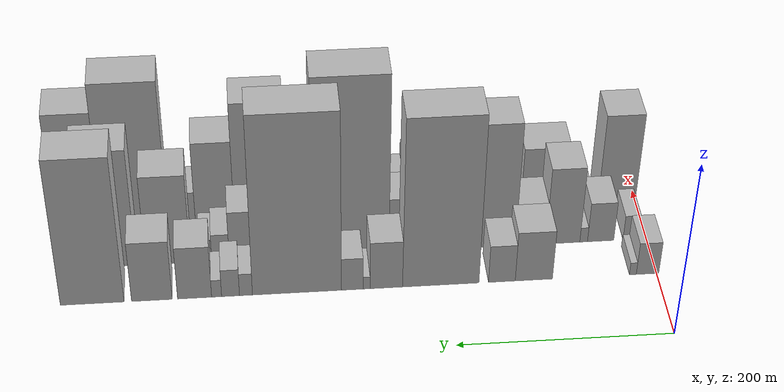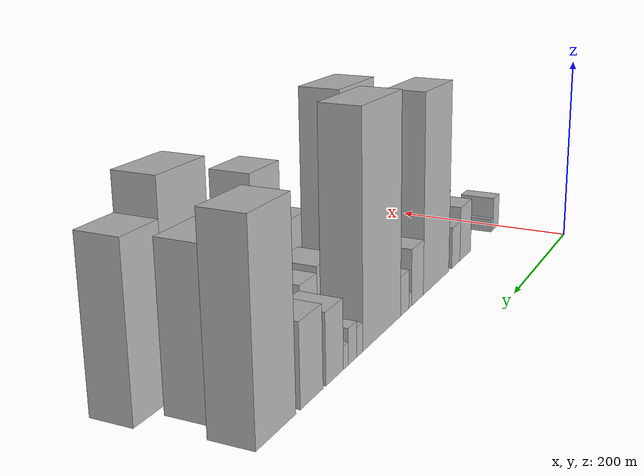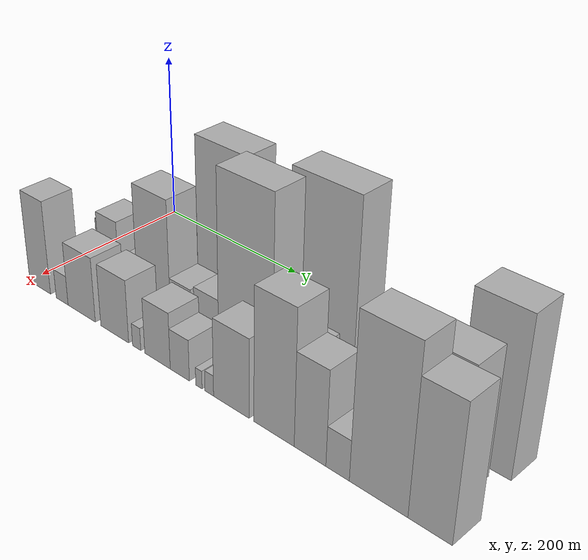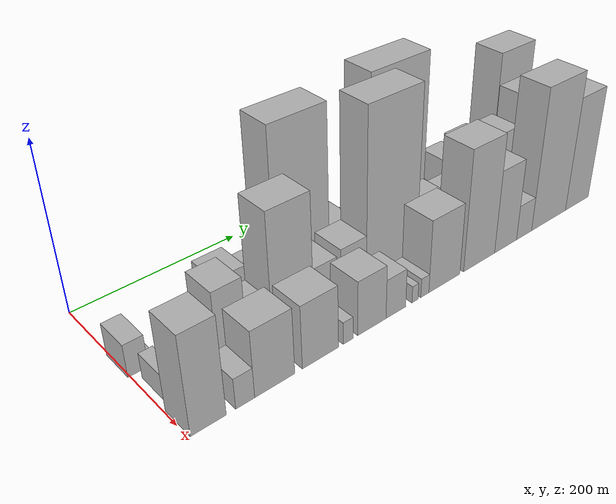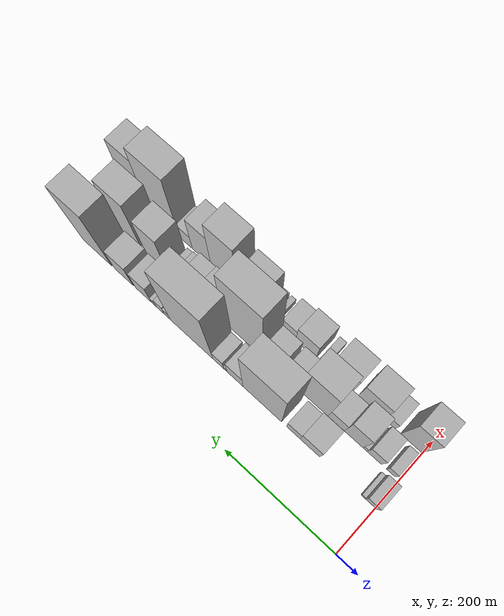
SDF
<sdf version="1.6">
 <world name="default">
  <model name="building_14">
   <static>1</static>
   <pose>100.0000 8.6215 0 0.000000 0.000000 0.000000</pose>
   <link name="link">
    <pose>0 0 19.50 0 0 0</pose>
    <collision name="collision"><geometry><box><size>40.0000 21.5228 39.0000</size></box></geometry></collision>
    <visual name="visual">
     <cast_shadows>0</cast_shadows>
     <geometry><box><size>40.0000 21.5228 39.0000</size></box></geometry>
     <material>
      <script>
       <uri>model://HANNAS_wall/materials/scripts</uri>
       <uri>model://HANNAS_wall/materials/textures</uri>
       <name>vrc/HANNAS_wall</name>
      </script>
     </material>
    </visual>
   </link>
  </model>
  <model name="building_15">
   <static>1</static>
   <pose>100.0000 22.6645 0 0.000000 0.000000 0.000000</pose>
   <link name="link">
    <pose>0 0 7.50 0 0 0</pose>
    <collision name="collision"><geometry><box><size>40.0000 6.5633 15.0000</size></box></geometry></collision>
    <visual name="visual">
     <cast_shadows>0</cast_shadows>
     <geometry><box><size>40.0000 6.5633 15.0000</size></box></geometry>
     <material>
      <script>
       <uri>model://HANNAS_wall/materials/scripts</uri>
       <uri>model://HANNAS_wall/materials/textures</uri>
       <name>vrc/HANNAS_wall</name>
      </script>
     </material>
    </visual>
   </link>
  </model>
  <model name="building_16">
   <static>1</static>
   <pose>100.0000 116.9736 0 0.000000 0.000000 0.000000</pose>
   <link name="link">
    <pose>0 0 30.00 0 0 0</pose>
    <collision name="collision"><geometry><box><size>40.0000 35.3516 60.0000</size></box></geometry></collision>
    <visual name="visual">
     <cast_shadows>0</cast_shadows>
     <geometry><box><size>40.0000 35.3516 60.0000</size></box></geometry>
     <material>
      <script>
       <uri>model://HANNAS_wall/materials/scripts</uri>
       <uri>model://HANNAS_wall/materials/textures</uri>
       <name>vrc/HANNAS_wall</name>
      </script>
     </material>
    </visual>
   </link>
  </model>
  <model name="building_17">
   <static>1</static>
   <pose>100.0000 147.3279 0 0.000000 0.000000 0.000000</pose>
   <link name="link">
    <pose>0 0 22.50 0 0 0</pose>
    <collision name="collision"><geometry><box><size>40.0000 25.3570 45.0000</size></box></geometry></collision>
    <visual name="visual">
     <cast_shadows>0</cast_shadows>
     <geometry><box><size>40.0000 25.3570 45.0000</size></box></geometry>
     <material>
      <script>
       <uri>model://HANNAS_wall/materials/scripts</uri>
       <uri>model://HANNAS_wall/materials/textures</uri>
       <name>vrc/HANNAS_wall</name>
      </script>
     </material>
    </visual>
   </link>
  </model>
  <model name="building_18">
   <static>1</static>
   <pose>100.0000 205.0709 0 0.000000 0.000000 0.000000</pose>
   <link name="link">
    <pose>0 0 100.50 0 0 0</pose>
    <collision name="collision"><geometry><box><size>40.0000 72.1291 201.0000</size></box></geometry></collision>
    <visual name="visual">
     <cast_shadows>0</cast_shadows>
     <geometry><box><size>40.0000 72.1291 201.0000</size></box></geometry>
     <material>
      <script>
       <uri>model://HANNAS_wall/materials/scripts</uri>
       <uri>model://HANNAS_wall/materials/textures</uri>
       <name>vrc/HANNAS_wall</name>
      </script>
     </material>
    </visual>
   </link>
  </model>
  <model name="building_19">
   <static>1</static>
   <pose>100.0000 256.4141 0 0.000000 0.000000 0.000000</pose>
   <link name="link">
    <pose>0 0 28.50 0 0 0</pose>
    <collision name="collision"><geometry><box><size>40.0000 30.5573 57.0000</size></box></geometry></collision>
    <visual name="visual">
     <cast_shadows>0</cast_shadows>
     <geometry><box><size>40.0000 30.5573 57.0000</size></box></geometry>
     <material>
      <script>
       <uri>model://HANNAS_wall/materials/scripts</uri>
       <uri>model://HANNAS_wall/materials/textures</uri>
       <name>vrc/HANNAS_wall</name>
      </script>
     </material>
    </visual>
   </link>
  </model>
  <model name="building_20">
   <static>1</static>
   <pose>100.0000 274.9264 0 0.000000 0.000000 0.000000</pose>
   <link name="link">
    <pose>0 0 7.50 0 0 0</pose>
    <collision name="collision"><geometry><box><size>40.0000 6.4674 15.0000</size></box></geometry></collision>
    <visual name="visual">
     <cast_shadows>0</cast_shadows>
     <geometry><box><size>40.0000 6.4674 15.0000</size></box></geometry>
     <material>
      <script>
       <uri>model://HANNAS_wall/materials/scripts</uri>
       <uri>model://HANNAS_wall/materials/textures</uri>
       <name>vrc/HANNAS_wall</name>
      </script>
     </material>
    </visual>
   </link>
  </model>
  <model name="building_21">
   <static>1</static>
   <pose>100.0000 288.3345 0 0.000000 0.000000 0.000000</pose>
   <link name="link">
    <pose>0 0 19.50 0 0 0</pose>
    <collision name="collision"><geometry><box><size>40.0000 20.3488 39.0000</size></box></geometry></collision>
    <visual name="visual">
     <cast_shadows>0</cast_shadows>
     <geometry><box><size>40.0000 20.3488 39.0000</size></box></geometry>
     <material>
      <script>
       <uri>model://HANNAS_wall/materials/scripts</uri>
       <uri>model://HANNAS_wall/materials/textures</uri>
       <name>vrc/HANNAS_wall</name>
      </script>
     </material>
    </visual>
   </link>
  </model>
  <model name="building_22">
   <static>1</static>
   <pose>100.0000 340.1343 0 0.000000 0.000000 0.000000</pose>
   <link name="link">
    <pose>0 0 106.50 0 0 0</pose>
    <collision name="collision"><geometry><box><size>40.0000 83.2506 213.0000</size></box></geometry></collision>
    <visual name="visual">
     <cast_shadows>0</cast_shadows>
     <geometry><box><size>40.0000 83.2506 213.0000</size></box></geometry>
     <material>
      <script>
       <uri>model://HANNAS_wall/materials/scripts</uri>
       <uri>model://HANNAS_wall/materials/textures</uri>
       <name>vrc/HANNAS_wall</name>
      </script>
     </material>
    </visual>
   </link>
  </model>
  <model name="building_23">
   <static>1</static>
   <pose>100.0000 387.8047 0 0.000000 0.000000 0.000000</pose>
   <link name="link">
    <pose>0 0 13.50 0 0 0</pose>
    <collision name="collision"><geometry><box><size>40.0000 12.0903 27.0000</size></box></geometry></collision>
    <visual name="visual">
     <cast_shadows>0</cast_shadows>
     <geometry><box><size>40.0000 12.0903 27.0000</size></box></geometry>
     <material>
      <script>
       <uri>model://HANNAS_wall/materials/scripts</uri>
       <uri>model://HANNAS_wall/materials/textures</uri>
       <name>vrc/HANNAS_wall</name>
      </script>
     </material>
    </visual>
   </link>
  </model>
  <model name="building_24">
   <static>1</static>
   <pose>100.0000 402.1680 0 0.000000 0.000000 0.000000</pose>
   <link name="link">
    <pose>0 0 16.50 0 0 0</pose>
    <collision name="collision"><geometry><box><size>40.0000 16.6363 33.0000</size></box></geometry></collision>
    <visual name="visual">
     <cast_shadows>0</cast_shadows>
     <geometry><box><size>40.0000 16.6363 33.0000</size></box></geometry>
     <material>
      <script>
       <uri>model://HANNAS_wall/materials/scripts</uri>
       <uri>model://HANNAS_wall/materials/textures</uri>
       <name>vrc/HANNAS_wall</name>
      </script>
     </material>
    </visual>
   </link>
  </model>
  <model name="building_25">
   <static>1</static>
   <pose>100.0000 415.1284 0 0.000000 0.000000 0.000000</pose>
   <link name="link">
    <pose>0 0 10.50 0 0 0</pose>
    <collision name="collision"><geometry><box><size>40.0000 9.2845 21.0000</size></box></geometry></collision>
    <visual name="visual">
     <cast_shadows>0</cast_shadows>
     <geometry><box><size>40.0000 9.2845 21.0000</size></box></geometry>
     <material>
      <script>
       <uri>model://HANNAS_wall/materials/scripts</uri>
       <uri>model://HANNAS_wall/materials/textures</uri>
       <name>vrc/HANNAS_wall</name>
      </script>
     </material>
    </visual>
   </link>
  </model>
  <model name="building_26">
   <static>1</static>
   <pose>100.0000 435.5712 0 0.000000 0.000000 0.000000</pose>
   <link name="link">
    <pose>0 0 31.50 0 0 0</pose>
    <collision name="collision"><geometry><box><size>40.0000 31.6012 63.0000</size></box></geometry></collision>
    <visual name="visual">
     <cast_shadows>0</cast_shadows>
     <geometry><box><size>40.0000 31.6012 63.0000</size></box></geometry>
     <material>
      <script>
       <uri>model://HANNAS_wall/materials/scripts</uri>
       <uri>model://HANNAS_wall/materials/textures</uri>
       <name>vrc/HANNAS_wall</name>
      </script>
     </material>
    </visual>
   </link>
  </model>
  <model name="building_27">
   <static>1</static>
   <pose>100.0000 475.1789 0 0.000000 0.000000 0.000000</pose>
   <link name="link">
    <pose>0 0 36.00 0 0 0</pose>
    <collision name="collision"><geometry><box><size>40.0000 37.6142 72.0000</size></box></geometry></collision>
    <visual name="visual">
     <cast_shadows>0</cast_shadows>
     <geometry><box><size>40.0000 37.6142 72.0000</size></box></geometry>
     <material>
      <script>
       <uri>model://HANNAS_wall/materials/scripts</uri>
       <uri>model://HANNAS_wall/materials/textures</uri>
       <name>vrc/HANNAS_wall</name>
      </script>
     </material>
    </visual>
   </link>
  </model>
  <model name="building_28">
   <static>1</static>
   <pose>100.0000 530.3695 0 0.000000 0.000000 0.000000</pose>
   <link name="link">
    <pose>0 0 87.00 0 0 0</pose>
    <collision name="collision"><geometry><box><size>40.0000 58.7670 174.0000</size></box></geometry></collision>
    <visual name="visual">
     <cast_shadows>0</cast_shadows>
     <geometry><box><size>40.0000 58.7670 174.0000</size></box></geometry>
     <material>
      <script>
       <uri>model://HANNAS_wall/materials/scripts</uri>
       <uri>model://HANNAS_wall/materials/textures</uri>
       <name>vrc/HANNAS_wall</name>
      </script>
     </material>
    </visual>
   </link>
  </model>
  <model name="building_44">
   <static>1</static>
   <pose>149.0000 15.0906 0 0.000000 0.000000 0.000000</pose>
   <link name="link">
    <pose>0 0 15.00 0 0 0</pose>
    <collision name="collision"><geometry><box><size>40.0000 15.2440 30.0000</size></box></geometry></collision>
    <visual name="visual">
     <cast_shadows>0</cast_shadows>
     <geometry><box><size>40.0000 15.2440 30.0000</size></box></geometry>
     <material>
      <script>
       <uri>model://HANNAS_wall/materials/scripts</uri>
       <uri>model://HANNAS_wall/materials/textures</uri>
       <name>vrc/HANNAS_wall</name>
      </script>
     </material>
    </visual>
   </link>
  </model>
  <model name="building_45">
   <static>1</static>
   <pose>149.0000 44.5261 0 0.000000 0.000000 0.000000</pose>
   <link name="link">
    <pose>0 0 24.00 0 0 0</pose>
    <collision name="collision"><geometry><box><size>40.0000 25.6268 48.0000</size></box></geometry></collision>
    <visual name="visual">
     <cast_shadows>0</cast_shadows>
     <geometry><box><size>40.0000 25.6268 48.0000</size></box></geometry>
     <material>
      <script>
       <uri>model://HANNAS_wall/materials/scripts</uri>
       <uri>model://HANNAS_wall/materials/textures</uri>
       <name>vrc/HANNAS_wall</name>
      </script>
     </material>
    </visual>
   </link>
  </model>
  <model name="building_46">
   <static>1</static>
   <pose>149.0000 61.0652 0 0.000000 0.000000 0.000000</pose>
   <link name="link">
    <pose>0 0 9.00 0 0 0</pose>
    <collision name="collision"><geometry><box><size>40.0000 7.4515 18.0000</size></box></geometry></collision>
    <visual name="visual">
     <cast_shadows>0</cast_shadows>
     <geometry><box><size>40.0000 7.4515 18.0000</size></box></geometry>
     <material>
      <script>
       <uri>model://HANNAS_wall/materials/scripts</uri>
       <uri>model://HANNAS_wall/materials/textures</uri>
       <name>vrc/HANNAS_wall</name>
      </script>
     </material>
    </visual>
   </link>
  </model>
  <model name="building_47">
   <static>1</static>
   <pose>149.0000 81.3213 0 0.000000 0.000000 0.000000</pose>
   <link name="link">
    <pose>0 0 46.50 0 0 0</pose>
    <collision name="collision"><geometry><box><size>40.0000 33.0606 93.0000</size></box></geometry></collision>
    <visual name="visual">
     <cast_shadows>0</cast_shadows>
     <geometry><box><size>40.0000 33.0606 93.0000</size></box></geometry>
     <material>
      <script>
       <uri>model://HANNAS_wall/materials/scripts</uri>
       <uri>model://HANNAS_wall/materials/textures</uri>
       <name>vrc/HANNAS_wall</name>
      </script>
     </material>
    </visual>
   </link>
  </model>
  <model name="building_48">
   <static>1</static>
   <pose>149.0000 112.6067 0 0.000000 0.000000 0.000000</pose>
   <link name="link">
    <pose>0 0 25.50 0 0 0</pose>
    <collision name="collision"><geometry><box><size>40.0000 29.5102 51.0000</size></box></geometry></collision>
    <visual name="visual">
     <cast_shadows>0</cast_shadows>
     <geometry><box><size>40.0000 29.5102 51.0000</size></box></geometry>
     <material>
      <script>
       <uri>model://HANNAS_wall/materials/scripts</uri>
       <uri>model://HANNAS_wall/materials/textures</uri>
       <name>vrc/HANNAS_wall</name>
      </script>
     </material>
    </visual>
   </link>
  </model>
  <model name="building_49">
   <static>1</static>
   <pose>149.0000 152.9877 0 0.000000 0.000000 0.000000</pose>
   <link name="link">
    <pose>0 0 75.00 0 0 0</pose>
    <collision name="collision"><geometry><box><size>40.0000 51.2518 150.0000</size></box></geometry></collision>
    <visual name="visual">
     <cast_shadows>0</cast_shadows>
     <geometry><box><size>40.0000 51.2518 150.0000</size></box></geometry>
     <material>
      <script>
       <uri>model://HANNAS_wall/materials/scripts</uri>
       <uri>model://HANNAS_wall/materials/textures</uri>
       <name>vrc/HANNAS_wall</name>
      </script>
     </material>
    </visual>
   </link>
  </model>
  <model name="building_50">
   <static>1</static>
   <pose>149.0000 194.1314 0 0.000000 0.000000 0.000000</pose>
   <link name="link">
    <pose>0 0 30.00 0 0 0</pose>
    <collision name="collision"><geometry><box><size>40.0000 31.0356 60.0000</size></box></geometry></collision>
    <visual name="visual">
     <cast_shadows>0</cast_shadows>
     <geometry><box><size>40.0000 31.0356 60.0000</size></box></geometry>
     <material>
      <script>
       <uri>model://HANNAS_wall/materials/scripts</uri>
       <uri>model://HANNAS_wall/materials/textures</uri>
       <name>vrc/HANNAS_wall</name>
      </script>
     </material>
    </visual>
   </link>
  </model>
  <model name="building_51">
   <static>1</static>
   <pose>149.0000 232.0259 0 0.000000 0.000000 0.000000</pose>
   <link name="link">
    <pose>0 0 33.00 0 0 0</pose>
    <collision name="collision"><geometry><box><size>40.0000 34.7534 66.0000</size></box></geometry></collision>
    <visual name="visual">
     <cast_shadows>0</cast_shadows>
     <geometry><box><size>40.0000 34.7534 66.0000</size></box></geometry>
     <material>
      <script>
       <uri>model://HANNAS_wall/materials/scripts</uri>
       <uri>model://HANNAS_wall/materials/textures</uri>
       <name>vrc/HANNAS_wall</name>
      </script>
     </material>
    </visual>
   </link>
  </model>
  <model name="building_52">
   <static>1</static>
   <pose>149.0000 286.1832 0 0.000000 0.000000 0.000000</pose>
   <link name="link">
    <pose>0 0 106.50 0 0 0</pose>
    <collision name="collision"><geometry><box><size>40.0000 73.5614 213.0000</size></box></geometry></collision>
    <visual name="visual">
     <cast_shadows>0</cast_shadows>
     <geometry><box><size>40.0000 73.5614 213.0000</size></box></geometry>
     <material>
      <script>
       <uri>model://HANNAS_wall/materials/scripts</uri>
       <uri>model://HANNAS_wall/materials/textures</uri>
       <name>vrc/HANNAS_wall</name>
      </script>
     </material>
    </visual>
   </link>
  </model>
  <model name="building_53">
   <static>1</static>
   <pose>149.0000 350.6762 0 0.000000 0.000000 0.000000</pose>
   <link name="link">
    <pose>0 0 33.00 0 0 0</pose>
    <collision name="collision"><geometry><box><size>40.0000 39.4246 66.0000</size></box></geometry></collision>
    <visual name="visual">
     <cast_shadows>0</cast_shadows>
     <geometry><box><size>40.0000 39.4246 66.0000</size></box></geometry>
     <material>
      <script>
       <uri>model://HANNAS_wall/materials/scripts</uri>
       <uri>model://HANNAS_wall/materials/textures</uri>
       <name>vrc/HANNAS_wall</name>
      </script>
     </material>
    </visual>
   </link>
  </model>
  <model name="building_54">
   <static>1</static>
   <pose>149.0000 386.2538 0 0.000000 0.000000 0.000000</pose>
   <link name="link">
    <pose>0 0 30.00 0 0 0</pose>
    <collision name="collision"><geometry><box><size>40.0000 31.7305 60.0000</size></box></geometry></collision>
    <visual name="visual">
     <cast_shadows>0</cast_shadows>
     <geometry><box><size>40.0000 31.7305 60.0000</size></box></geometry>
     <material>
      <script>
       <uri>model://HANNAS_wall/materials/scripts</uri>
       <uri>model://HANNAS_wall/materials/textures</uri>
       <name>vrc/HANNAS_wall</name>
      </script>
     </material>
    </visual>
   </link>
  </model>
  <model name="building_55">
   <static>1</static>
   <pose>149.0000 410.4090 0 0.000000 0.000000 0.000000</pose>
   <link name="link">
    <pose>0 0 16.50 0 0 0</pose>
    <collision name="collision"><geometry><box><size>40.0000 16.5799 33.0000</size></box></geometry></collision>
    <visual name="visual">
     <cast_shadows>0</cast_shadows>
     <geometry><box><size>40.0000 16.5799 33.0000</size></box></geometry>
     <material>
      <script>
       <uri>model://HANNAS_wall/materials/scripts</uri>
       <uri>model://HANNAS_wall/materials/textures</uri>
       <name>vrc/HANNAS_wall</name>
      </script>
     </material>
    </visual>
   </link>
  </model>
  <model name="building_56">
   <static>1</static>
   <pose>149.0000 424.7665 0 0.000000 0.000000 0.000000</pose>
   <link name="link">
    <pose>0 0 13.50 0 0 0</pose>
    <collision name="collision"><geometry><box><size>40.0000 12.1351 27.0000</size></box></geometry></collision>
    <visual name="visual">
     <cast_shadows>0</cast_shadows>
     <geometry><box><size>40.0000 12.1351 27.0000</size></box></geometry>
     <material>
      <script>
       <uri>model://HANNAS_wall/materials/scripts</uri>
       <uri>model://HANNAS_wall/materials/textures</uri>
       <name>vrc/HANNAS_wall</name>
      </script>
     </material>
    </visual>
   </link>
  </model>
  <model name="building_57">
   <static>1</static>
   <pose>149.0000 460.0858 0 0.000000 0.000000 0.000000</pose>
   <link name="link">
    <pose>0 0 54.00 0 0 0</pose>
    <collision name="collision"><geometry><box><size>40.0000 42.5035 108.0000</size></box></geometry></collision>
    <visual name="visual">
     <cast_shadows>0</cast_shadows>
     <geometry><box><size>40.0000 42.5035 108.0000</size></box></geometry>
     <material>
      <script>
       <uri>model://HANNAS_wall/materials/scripts</uri>
       <uri>model://HANNAS_wall/materials/textures</uri>
       <name>vrc/HANNAS_wall</name>
      </script>
     </material>
    </visual>
   </link>
  </model>
  <model name="building_58">
   <static>1</static>
   <pose>149.0000 516.4774 0 0.000000 0.000000 0.000000</pose>
   <link name="link">
    <pose>0 0 70.50 0 0 0</pose>
    <collision name="collision"><geometry><box><size>40.0000 52.2797 141.0000</size></box></geometry></collision>
    <visual name="visual">
     <cast_shadows>0</cast_shadows>
     <geometry><box><size>40.0000 52.2797 141.0000</size></box></geometry>
     <material>
      <script>
       <uri>model://HANNAS_wall/materials/scripts</uri>
       <uri>model://HANNAS_wall/materials/textures</uri>
       <name>vrc/HANNAS_wall</name>
      </script>
     </material>
    </visual>
   </link>
  </model>
  <model name="building_75">
   <static>1</static>
   <pose>198.0000 20.3163 0 0.000000 0.000000 0.000000</pose>
   <link name="link">
    <pose>0 0 57.00 0 0 0</pose>
    <collision name="collision"><geometry><box><size>40.0000 37.2187 114.0000</size></box></geometry></collision>
    <visual name="visual">
     <cast_shadows>0</cast_shadows>
     <geometry><box><size>40.0000 37.2187 114.0000</size></box></geometry>
     <material>
      <script>
       <uri>model://HANNAS_wall/materials/scripts</uri>
       <uri>model://HANNAS_wall/materials/textures</uri>
       <name>vrc/HANNAS_wall</name>
      </script>
     </material>
    </visual>
   </link>
  </model>
  <model name="building_76">
   <static>1</static>
   <pose>198.0000 59.2380 0 0.000000 0.000000 0.000000</pose>
   <link name="link">
    <pose>0 0 18.00 0 0 0</pose>
    <collision name="collision"><geometry><box><size>40.0000 20.6248 36.0000</size></box></geometry></collision>
    <visual name="visual">
     <cast_shadows>0</cast_shadows>
     <geometry><box><size>40.0000 20.6248 36.0000</size></box></geometry>
     <material>
      <script>
       <uri>model://HANNAS_wall/materials/scripts</uri>
       <uri>model://HANNAS_wall/materials/textures</uri>
       <name>vrc/HANNAS_wall</name>
      </script>
     </material>
    </visual>
   </link>
  </model>
  <model name="building_77">
   <static>1</static>
   <pose>198.0000 92.4446 0 0.000000 0.000000 0.000000</pose>
   <link name="link">
    <pose>0 0 39.00 0 0 0</pose>
    <collision name="collision"><geometry><box><size>40.0000 45.7883 78.0000</size></box></geometry></collision>
    <visual name="visual">
     <cast_shadows>0</cast_shadows>
     <geometry><box><size>40.0000 45.7883 78.0000</size></box></geometry>
     <material>
      <script>
       <uri>model://HANNAS_wall/materials/scripts</uri>
       <uri>model://HANNAS_wall/materials/textures</uri>
       <name>vrc/HANNAS_wall</name>
      </script>
     </material>
    </visual>
   </link>
  </model>
  <model name="building_78">
   <static>1</static>
   <pose>198.0000 146.4925 0 0.000000 0.000000 0.000000</pose>
   <link name="link">
    <pose>0 0 37.50 0 0 0</pose>
    <collision name="collision"><geometry><box><size>40.0000 44.3075 75.0000</size></box></geometry></collision>
    <visual name="visual">
     <cast_shadows>0</cast_shadows>
     <geometry><box><size>40.0000 44.3075 75.0000</size></box></geometry>
     <material>
      <script>
       <uri>model://HANNAS_wall/materials/scripts</uri>
       <uri>model://HANNAS_wall/materials/textures</uri>
       <name>vrc/HANNAS_wall</name>
      </script>
     </material>
    </visual>
   </link>
  </model>
  <model name="building_79">
   <static>1</static>
   <pose>198.0000 181.0132 0 0.000000 0.000000 0.000000</pose>
   <link name="link">
    <pose>0 0 13.50 0 0 0</pose>
    <collision name="collision"><geometry><box><size>40.0000 12.7341 27.0000</size></box></geometry></collision>
    <visual name="visual">
     <cast_shadows>0</cast_shadows>
     <geometry><box><size>40.0000 12.7341 27.0000</size></box></geometry>
     <material>
      <script>
       <uri>model://HANNAS_wall/materials/scripts</uri>
       <uri>model://HANNAS_wall/materials/textures</uri>
       <name>vrc/HANNAS_wall</name>
      </script>
     </material>
    </visual>
   </link>
  </model>
  <model name="building_80">
   <static>1</static>
   <pose>198.0000 212.3127 0 0.000000 0.000000 0.000000</pose>
   <link name="link">
    <pose>0 0 33.00 0 0 0</pose>
    <collision name="collision"><geometry><box><size>40.0000 37.8649 66.0000</size></box></geometry></collision>
    <visual name="visual">
     <cast_shadows>0</cast_shadows>
     <geometry><box><size>40.0000 37.8649 66.0000</size></box></geometry>
     <material>
      <script>
       <uri>model://HANNAS_wall/materials/scripts</uri>
       <uri>model://HANNAS_wall/materials/textures</uri>
       <name>vrc/HANNAS_wall</name>
      </script>
     </material>
    </visual>
   </link>
  </model>
  <model name="building_81">
   <static>1</static>
   <pose>198.0000 244.9459 0 0.000000 0.000000 0.000000</pose>
   <link name="link">
    <pose>0 0 24.00 0 0 0</pose>
    <collision name="collision"><geometry><box><size>40.0000 27.4015 48.0000</size></box></geometry></collision>
    <visual name="visual">
     <cast_shadows>0</cast_shadows>
     <geometry><box><size>40.0000 27.4015 48.0000</size></box></geometry>
     <material>
      <script>
       <uri>model://HANNAS_wall/materials/scripts</uri>
       <uri>model://HANNAS_wall/materials/textures</uri>
       <name>vrc/HANNAS_wall</name>
      </script>
     </material>
    </visual>
   </link>
  </model>
  <model name="building_82">
   <static>1</static>
   <pose>198.0000 272.0368 0 0.000000 0.000000 0.000000</pose>
   <link name="link">
    <pose>0 0 10.50 0 0 0</pose>
    <collision name="collision"><geometry><box><size>40.0000 8.7801 21.0000</size></box></geometry></collision>
    <visual name="visual">
     <cast_shadows>0</cast_shadows>
     <geometry><box><size>40.0000 8.7801 21.0000</size></box></geometry>
     <material>
      <script>
       <uri>model://HANNAS_wall/materials/scripts</uri>
       <uri>model://HANNAS_wall/materials/textures</uri>
       <name>vrc/HANNAS_wall</name>
      </script>
     </material>
    </visual>
   </link>
  </model>
  <model name="building_83">
   <static>1</static>
   <pose>198.0000 286.3210 0 0.000000 0.000000 0.000000</pose>
   <link name="link">
    <pose>0 0 12.00 0 0 0</pose>
    <collision name="collision"><geometry><box><size>40.0000 11.7885 24.0000</size></box></geometry></collision>
    <visual name="visual">
     <cast_shadows>0</cast_shadows>
     <geometry><box><size>40.0000 11.7885 24.0000</size></box></geometry>
     <material>
      <script>
       <uri>model://HANNAS_wall/materials/scripts</uri>
       <uri>model://HANNAS_wall/materials/textures</uri>
       <name>vrc/HANNAS_wall</name>
      </script>
     </material>
    </visual>
   </link>
  </model>
  <model name="building_84">
   <static>1</static>
   <pose>198.0000 315.8248 0 0.000000 0.000000 0.000000</pose>
   <link name="link">
    <pose>0 0 45.00 0 0 0</pose>
    <collision name="collision"><geometry><box><size>40.0000 47.2190 90.0000</size></box></geometry></collision>
    <visual name="visual">
     <cast_shadows>0</cast_shadows>
     <geometry><box><size>40.0000 47.2190 90.0000</size></box></geometry>
     <material>
      <script>
       <uri>model://HANNAS_wall/materials/scripts</uri>
       <uri>model://HANNAS_wall/materials/textures</uri>
       <name>vrc/HANNAS_wall</name>
      </script>
     </material>
    </visual>
   </link>
  </model>
  <model name="building_85">
   <static>1</static>
   <pose>198.0000 370.6007 0 0.000000 0.000000 0.000000</pose>
   <link name="link">
    <pose>0 0 75.00 0 0 0</pose>
    <collision name="collision"><geometry><box><size>40.0000 50.3329 150.0000</size></box></geometry></collision>
    <visual name="visual">
     <cast_shadows>0</cast_shadows>
     <geometry><box><size>40.0000 50.3329 150.0000</size></box></geometry>
     <material>
      <script>
       <uri>model://HANNAS_wall/materials/scripts</uri>
       <uri>model://HANNAS_wall/materials/textures</uri>
       <name>vrc/HANNAS_wall</name>
      </script>
     </material>
    </visual>
   </link>
  </model>
  <model name="building_86">
   <static>1</static>
   <pose>198.0000 414.5280 0 0.000000 0.000000 0.000000</pose>
   <link name="link">
    <pose>0 0 52.50 0 0 0</pose>
    <collision name="collision"><geometry><box><size>40.0000 37.5215 105.0000</size></box></geometry></collision>
    <visual name="visual">
     <cast_shadows>0</cast_shadows>
     <geometry><box><size>40.0000 37.5215 105.0000</size></box></geometry>
     <material>
      <script>
       <uri>model://HANNAS_wall/materials/scripts</uri>
       <uri>model://HANNAS_wall/materials/textures</uri>
       <name>vrc/HANNAS_wall</name>
      </script>
     </material>
    </visual>
   </link>
  </model>
  <model name="building_87">
   <static>1</static>
   <pose>198.0000 446.6433 0 0.000000 0.000000 0.000000</pose>
   <link name="link">
    <pose>0 0 22.50 0 0 0</pose>
    <collision name="collision"><geometry><box><size>40.0000 26.7092 45.0000</size></box></geometry></collision>
    <visual name="visual">
     <cast_shadows>0</cast_shadows>
     <geometry><box><size>40.0000 26.7092 45.0000</size></box></geometry>
     <material>
      <script>
       <uri>model://HANNAS_wall/materials/scripts</uri>
       <uri>model://HANNAS_wall/materials/textures</uri>
       <name>vrc/HANNAS_wall</name>
      </script>
     </material>
    </visual>
   </link>
  </model>
  <model name="building_88">
   <static>1</static>
   <pose>198.0000 491.5813 0 0.000000 0.000000 0.000000</pose>
   <link name="link">
    <pose>0 0 90.00 0 0 0</pose>
    <collision name="collision"><geometry><box><size>40.0000 63.1667 180.0000</size></box></geometry></collision>
    <visual name="visual">
     <cast_shadows>0</cast_shadows>
     <geometry><box><size>40.0000 63.1667 180.0000</size></box></geometry>
     <material>
      <script>
       <uri>model://HANNAS_wall/materials/scripts</uri>
       <uri>model://HANNAS_wall/materials/textures</uri>
       <name>vrc/HANNAS_wall</name>
      </script>
     </material>
    </visual>
   </link>
  </model>
  <model name="building_89">
   <static>1</static>
   <pose>198.0000 545.6314 0 0.000000 0.000000 0.000000</pose>
   <link name="link">
    <pose>0 0 73.50 0 0 0</pose>
    <collision name="collision"><geometry><box><size>40.0000 44.9336 147.0000</size></box></geometry></collision>
    <visual name="visual">
     <cast_shadows>0</cast_shadows>
     <geometry><box><size>40.0000 44.9336 147.0000</size></box></geometry>
     <material>
      <script>
       <uri>model://HANNAS_wall/materials/scripts</uri>
       <uri>model://HANNAS_wall/materials/textures</uri>
       <name>vrc/HANNAS_wall</name>
      </script>
     </material>
    </visual>
   </link>
  </model>
 </world>
</sdf>
